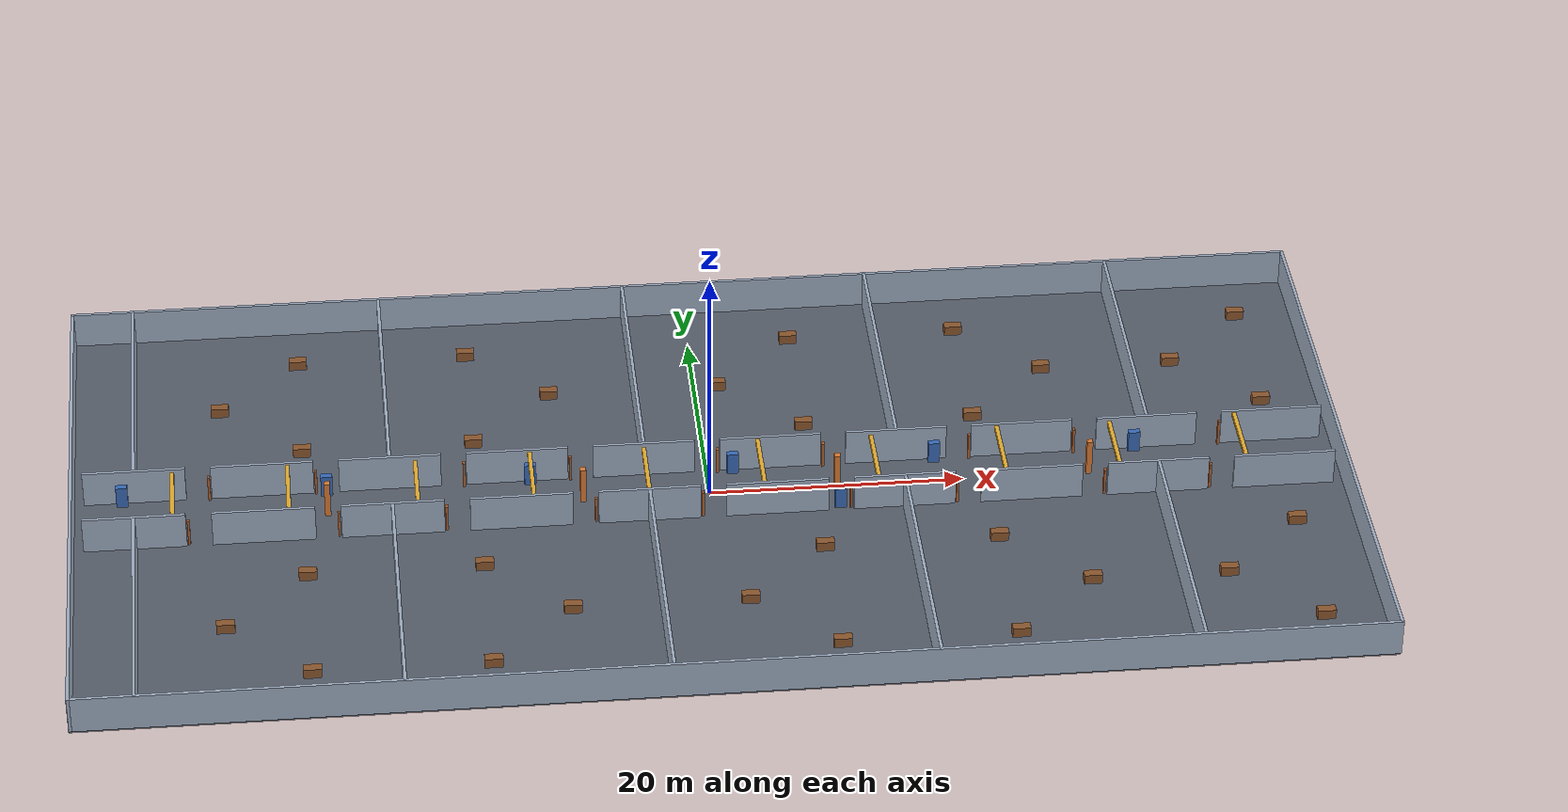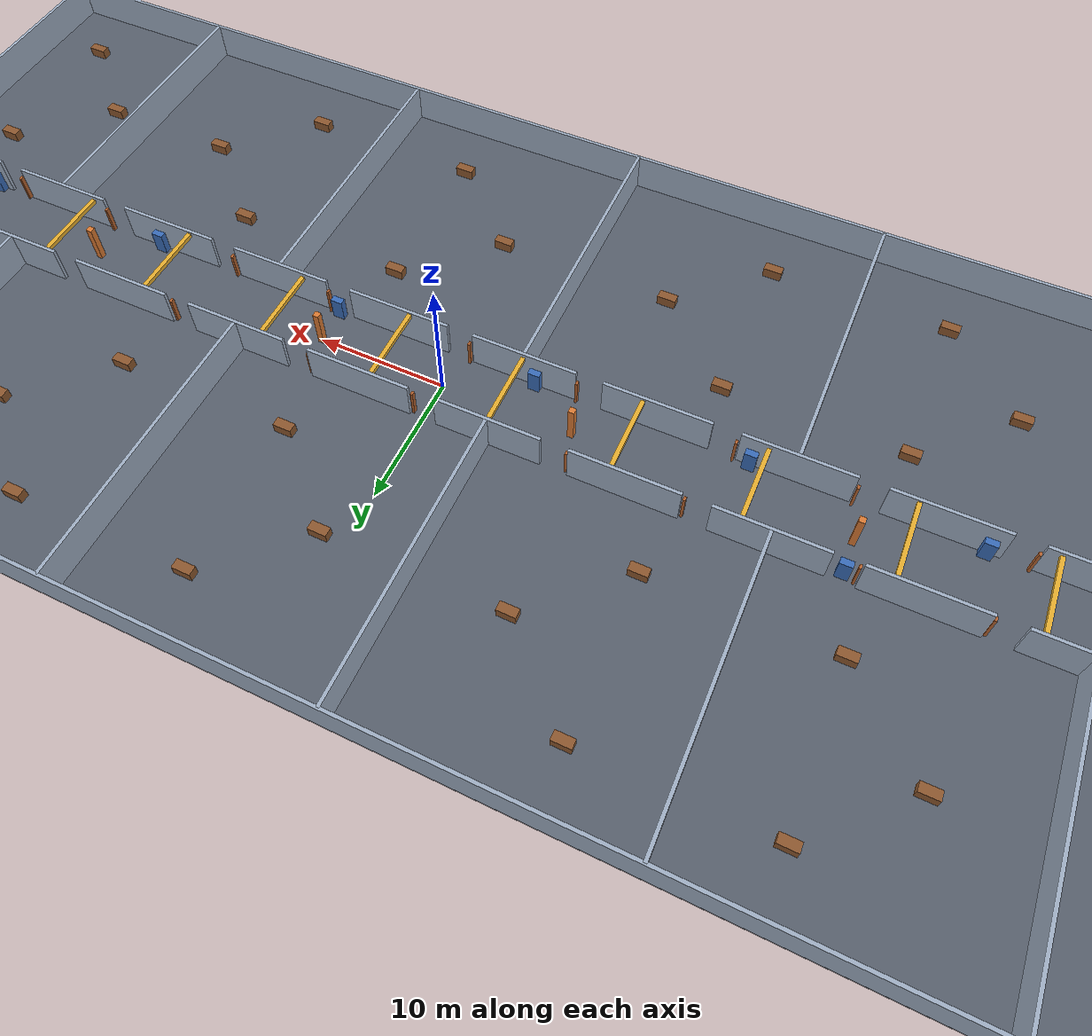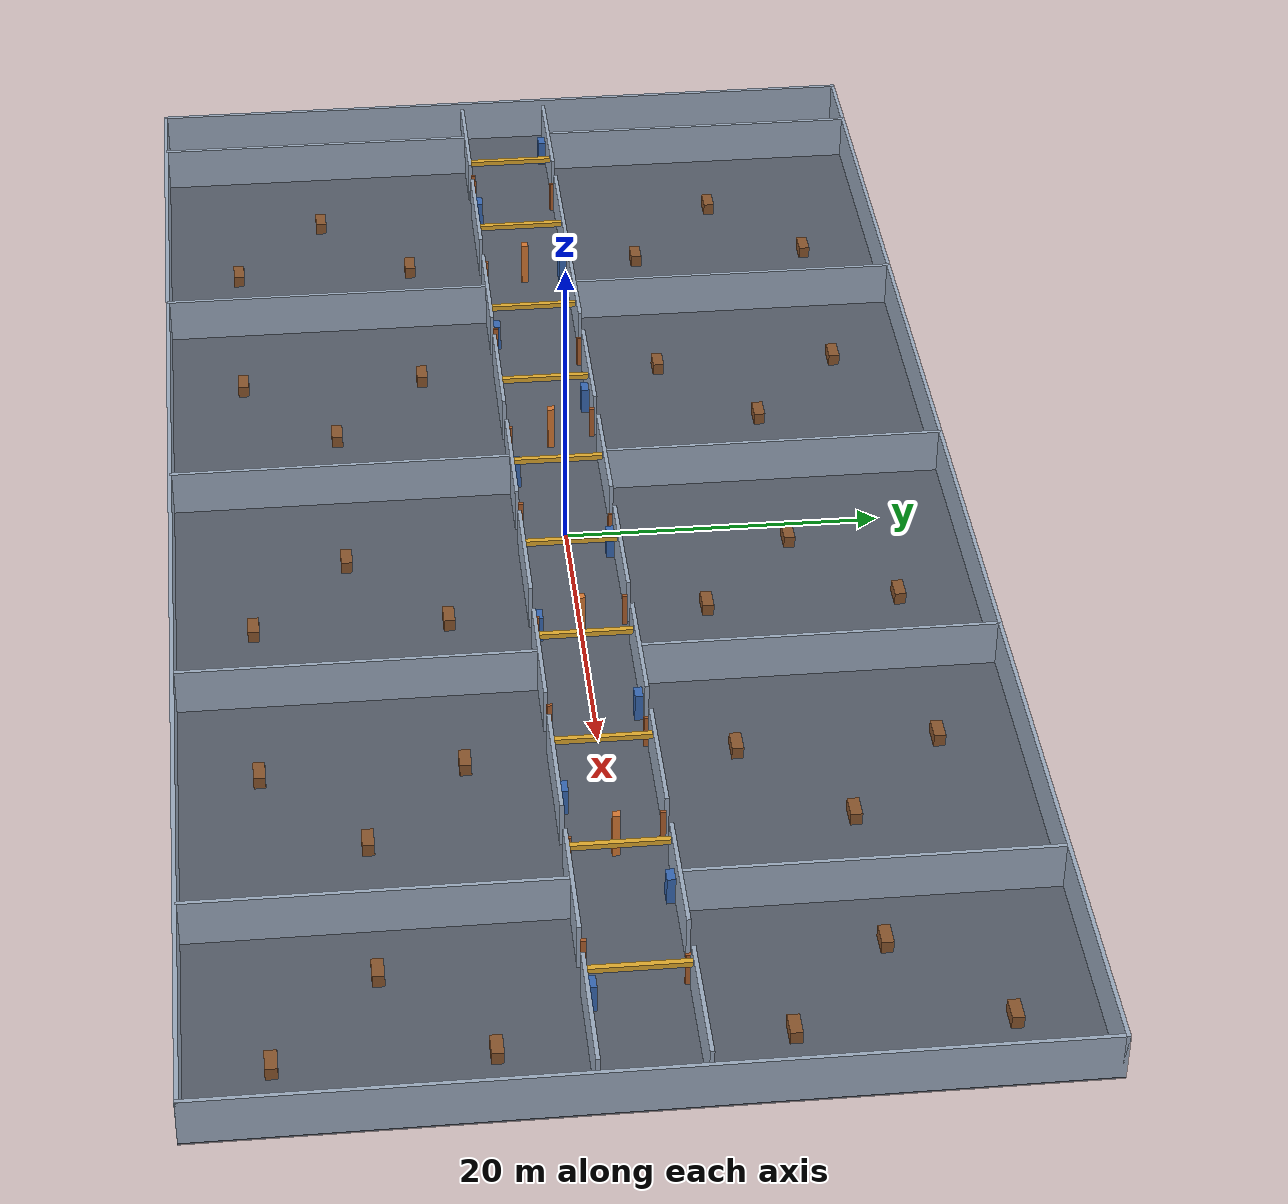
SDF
<sdf version='1.7'>
  <world name='default'>
    <light name='sun' type='directional'>
      <pose>0 0 60 0 0 0</pose>
      <diffuse>0.9 0.9 0.9 1</diffuse>
      <specular>0.2 0.2 0.2 1</specular>
      <direction>-0.3 0.2 -0.9</direction>
    </light>
    <gravity>0 0 -9.8</gravity>
    <physics type='ode'>
      <max_step_size>0.005</max_step_size>
      <real_time_factor>1</real_time_factor>
      <real_time_update_rate>200</real_time_update_rate>
    </physics>
    <plugin filename='ignition-gazebo-physics-system' name='gz::sim::systems::Physics'/>
    <plugin filename='ignition-gazebo-sensors-system' name='gz::sim::systems::Sensors'>
      <render_engine>ogre2</render_engine>
    </plugin>
    <plugin filename='ignition-gazebo-imu-system' name='gz::sim::systems::Imu'/>
    <plugin filename='ignition-gazebo-user-commands-system' name='gz::sim::systems::UserCommands'/>
    <plugin filename='ignition-gazebo-scene-broadcaster-system' name='gz::sim::systems::SceneBroadcaster'/>
    <scene>
      <ambient>0.55 0.55 0.55 1</ambient>
      <background>0.78 0.82 0.88 1</background>
      <shadows>true</shadows>
    </scene>
    <model name='teaching_building_corridor'>
      <static>true</static>
      <link name='floor'>
        <pose>0.000 0.000 -0.050 0 0 0</pose>
        <collision name='collision'>
          <geometry><box><size>100.000 50.000 0.100</size></box></geometry>
        </collision>
        <visual name='visual'>
          <geometry><box><size>100.000 50.000 0.100</size></box></geometry>
          <material>
            <ambient>0.340 0.370 0.420 1.000</ambient>
            <diffuse>0.340 0.370 0.420 1.000</diffuse>
          </material>
        </visual>
      </link>
      <link name='outer_north'>
        <pose>0.000 24.875 1.500 0 0 0</pose>
        <collision name='collision'>
          <geometry><box><size>100.000 0.250 3.000</size></box></geometry>
        </collision>
        <visual name='visual'>
          <geometry><box><size>100.000 0.250 3.000</size></box></geometry>
          <material>
            <ambient>0.620 0.680 0.760 1.000</ambient>
            <diffuse>0.620 0.680 0.760 1.000</diffuse>
          </material>
        </visual>
      </link>
      <link name='outer_south'>
        <pose>0.000 -24.875 1.500 0 0 0</pose>
        <collision name='collision'>
          <geometry><box><size>100.000 0.250 3.000</size></box></geometry>
        </collision>
        <visual name='visual'>
          <geometry><box><size>100.000 0.250 3.000</size></box></geometry>
          <material>
            <ambient>0.620 0.680 0.760 1.000</ambient>
            <diffuse>0.620 0.680 0.760 1.000</diffuse>
          </material>
        </visual>
      </link>
      <link name='outer_east'>
        <pose>49.875 0.000 1.500 0 0 0</pose>
        <collision name='collision'>
          <geometry><box><size>0.250 50.000 3.000</size></box></geometry>
        </collision>
        <visual name='visual'>
          <geometry><box><size>0.250 50.000 3.000</size></box></geometry>
          <material>
            <ambient>0.620 0.680 0.760 1.000</ambient>
            <diffuse>0.620 0.680 0.760 1.000</diffuse>
          </material>
        </visual>
      </link>
      <link name='outer_west'>
        <pose>-49.875 0.000 1.500 0 0 0</pose>
        <collision name='collision'>
          <geometry><box><size>0.250 50.000 3.000</size></box></geometry>
        </collision>
        <visual name='visual'>
          <geometry><box><size>0.250 50.000 3.000</size></box></geometry>
          <material>
            <ambient>0.620 0.680 0.760 1.000</ambient>
            <diffuse>0.620 0.680 0.760 1.000</diffuse>
          </material>
        </visual>
      </link>
      <link name='corridor_north_0'>
        <pose>-45.000 3.000 1.500 0 0 0</pose>
        <collision name='collision'>
          <geometry><box><size>8.000 0.250 3.000</size></box></geometry>
        </collision>
        <visual name='visual'>
          <geometry><box><size>8.000 0.250 3.000</size></box></geometry>
          <material>
            <ambient>0.620 0.680 0.760 1.000</ambient>
            <diffuse>0.620 0.680 0.760 1.000</diffuse>
          </material>
        </visual>
      </link>
      <link name='corridor_north_1'>
        <pose>-35.000 3.000 1.500 0 0 0</pose>
        <collision name='collision'>
          <geometry><box><size>8.000 0.250 3.000</size></box></geometry>
        </collision>
        <visual name='visual'>
          <geometry><box><size>8.000 0.250 3.000</size></box></geometry>
          <material>
            <ambient>0.620 0.680 0.760 1.000</ambient>
            <diffuse>0.620 0.680 0.760 1.000</diffuse>
          </material>
        </visual>
      </link>
      <link name='corridor_north_2'>
        <pose>-25.000 3.000 1.500 0 0 0</pose>
        <collision name='collision'>
          <geometry><box><size>8.000 0.250 3.000</size></box></geometry>
        </collision>
        <visual name='visual'>
          <geometry><box><size>8.000 0.250 3.000</size></box></geometry>
          <material>
            <ambient>0.620 0.680 0.760 1.000</ambient>
            <diffuse>0.620 0.680 0.760 1.000</diffuse>
          </material>
        </visual>
      </link>
      <link name='corridor_north_3'>
        <pose>-15.000 3.000 1.500 0 0 0</pose>
        <collision name='collision'>
          <geometry><box><size>8.000 0.250 3.000</size></box></geometry>
        </collision>
        <visual name='visual'>
          <geometry><box><size>8.000 0.250 3.000</size></box></geometry>
          <material>
            <ambient>0.620 0.680 0.760 1.000</ambient>
            <diffuse>0.620 0.680 0.760 1.000</diffuse>
          </material>
        </visual>
      </link>
      <link name='corridor_north_4'>
        <pose>-5.000 3.000 1.500 0 0 0</pose>
        <collision name='collision'>
          <geometry><box><size>8.000 0.250 3.000</size></box></geometry>
        </collision>
        <visual name='visual'>
          <geometry><box><size>8.000 0.250 3.000</size></box></geometry>
          <material>
            <ambient>0.620 0.680 0.760 1.000</ambient>
            <diffuse>0.620 0.680 0.760 1.000</diffuse>
          </material>
        </visual>
      </link>
      <link name='corridor_north_5'>
        <pose>5.000 3.000 1.500 0 0 0</pose>
        <collision name='collision'>
          <geometry><box><size>8.000 0.250 3.000</size></box></geometry>
        </collision>
        <visual name='visual'>
          <geometry><box><size>8.000 0.250 3.000</size></box></geometry>
          <material>
            <ambient>0.620 0.680 0.760 1.000</ambient>
            <diffuse>0.620 0.680 0.760 1.000</diffuse>
          </material>
        </visual>
      </link>
      <link name='corridor_north_6'>
        <pose>15.000 3.000 1.500 0 0 0</pose>
        <collision name='collision'>
          <geometry><box><size>8.000 0.250 3.000</size></box></geometry>
        </collision>
        <visual name='visual'>
          <geometry><box><size>8.000 0.250 3.000</size></box></geometry>
          <material>
            <ambient>0.620 0.680 0.760 1.000</ambient>
            <diffuse>0.620 0.680 0.760 1.000</diffuse>
          </material>
        </visual>
      </link>
      <link name='corridor_north_7'>
        <pose>25.000 3.000 1.500 0 0 0</pose>
        <collision name='collision'>
          <geometry><box><size>8.000 0.250 3.000</size></box></geometry>
        </collision>
        <visual name='visual'>
          <geometry><box><size>8.000 0.250 3.000</size></box></geometry>
          <material>
            <ambient>0.620 0.680 0.760 1.000</ambient>
            <diffuse>0.620 0.680 0.760 1.000</diffuse>
          </material>
        </visual>
      </link>
      <link name='corridor_north_8'>
        <pose>35.000 3.000 1.500 0 0 0</pose>
        <collision name='collision'>
          <geometry><box><size>8.000 0.250 3.000</size></box></geometry>
        </collision>
        <visual name='visual'>
          <geometry><box><size>8.000 0.250 3.000</size></box></geometry>
          <material>
            <ambient>0.620 0.680 0.760 1.000</ambient>
            <diffuse>0.620 0.680 0.760 1.000</diffuse>
          </material>
        </visual>
      </link>
      <link name='corridor_north_9'>
        <pose>45.000 3.000 1.500 0 0 0</pose>
        <collision name='collision'>
          <geometry><box><size>8.000 0.250 3.000</size></box></geometry>
        </collision>
        <visual name='visual'>
          <geometry><box><size>8.000 0.250 3.000</size></box></geometry>
          <material>
            <ambient>0.620 0.680 0.760 1.000</ambient>
            <diffuse>0.620 0.680 0.760 1.000</diffuse>
          </material>
        </visual>
      </link>
      <link name='corridor_south_0'>
        <pose>-45.000 -3.000 1.500 0 0 0</pose>
        <collision name='collision'>
          <geometry><box><size>8.000 0.250 3.000</size></box></geometry>
        </collision>
        <visual name='visual'>
          <geometry><box><size>8.000 0.250 3.000</size></box></geometry>
          <material>
            <ambient>0.620 0.680 0.760 1.000</ambient>
            <diffuse>0.620 0.680 0.760 1.000</diffuse>
          </material>
        </visual>
      </link>
      <link name='corridor_south_1'>
        <pose>-35.000 -3.000 1.500 0 0 0</pose>
        <collision name='collision'>
          <geometry><box><size>8.000 0.250 3.000</size></box></geometry>
        </collision>
        <visual name='visual'>
          <geometry><box><size>8.000 0.250 3.000</size></box></geometry>
          <material>
            <ambient>0.620 0.680 0.760 1.000</ambient>
            <diffuse>0.620 0.680 0.760 1.000</diffuse>
          </material>
        </visual>
      </link>
      <link name='corridor_south_2'>
        <pose>-25.000 -3.000 1.500 0 0 0</pose>
        <collision name='collision'>
          <geometry><box><size>8.000 0.250 3.000</size></box></geometry>
        </collision>
        <visual name='visual'>
          <geometry><box><size>8.000 0.250 3.000</size></box></geometry>
          <material>
            <ambient>0.620 0.680 0.760 1.000</ambient>
            <diffuse>0.620 0.680 0.760 1.000</diffuse>
          </material>
        </visual>
      </link>
      <link name='corridor_south_3'>
        <pose>-15.000 -3.000 1.500 0 0 0</pose>
        <collision name='collision'>
          <geometry><box><size>8.000 0.250 3.000</size></box></geometry>
        </collision>
        <visual name='visual'>
          <geometry><box><size>8.000 0.250 3.000</size></box></geometry>
          <material>
            <ambient>0.620 0.680 0.760 1.000</ambient>
            <diffuse>0.620 0.680 0.760 1.000</diffuse>
          </material>
        </visual>
      </link>
      <link name='corridor_south_4'>
        <pose>-5.000 -3.000 1.500 0 0 0</pose>
        <collision name='collision'>
          <geometry><box><size>8.000 0.250 3.000</size></box></geometry>
        </collision>
        <visual name='visual'>
          <geometry><box><size>8.000 0.250 3.000</size></box></geometry>
          <material>
            <ambient>0.620 0.680 0.760 1.000</ambient>
            <diffuse>0.620 0.680 0.760 1.000</diffuse>
          </material>
        </visual>
      </link>
      <link name='corridor_south_5'>
        <pose>5.000 -3.000 1.500 0 0 0</pose>
        <collision name='collision'>
          <geometry><box><size>8.000 0.250 3.000</size></box></geometry>
        </collision>
        <visual name='visual'>
          <geometry><box><size>8.000 0.250 3.000</size></box></geometry>
          <material>
            <ambient>0.620 0.680 0.760 1.000</ambient>
            <diffuse>0.620 0.680 0.760 1.000</diffuse>
          </material>
        </visual>
      </link>
      <link name='corridor_south_6'>
        <pose>15.000 -3.000 1.500 0 0 0</pose>
        <collision name='collision'>
          <geometry><box><size>8.000 0.250 3.000</size></box></geometry>
        </collision>
        <visual name='visual'>
          <geometry><box><size>8.000 0.250 3.000</size></box></geometry>
          <material>
            <ambient>0.620 0.680 0.760 1.000</ambient>
            <diffuse>0.620 0.680 0.760 1.000</diffuse>
          </material>
        </visual>
      </link>
      <link name='corridor_south_7'>
        <pose>25.000 -3.000 1.500 0 0 0</pose>
        <collision name='collision'>
          <geometry><box><size>8.000 0.250 3.000</size></box></geometry>
        </collision>
        <visual name='visual'>
          <geometry><box><size>8.000 0.250 3.000</size></box></geometry>
          <material>
            <ambient>0.620 0.680 0.760 1.000</ambient>
            <diffuse>0.620 0.680 0.760 1.000</diffuse>
          </material>
        </visual>
      </link>
      <link name='corridor_south_8'>
        <pose>35.000 -3.000 1.500 0 0 0</pose>
        <collision name='collision'>
          <geometry><box><size>8.000 0.250 3.000</size></box></geometry>
        </collision>
        <visual name='visual'>
          <geometry><box><size>8.000 0.250 3.000</size></box></geometry>
          <material>
            <ambient>0.620 0.680 0.760 1.000</ambient>
            <diffuse>0.620 0.680 0.760 1.000</diffuse>
          </material>
        </visual>
      </link>
      <link name='corridor_south_9'>
        <pose>45.000 -3.000 1.500 0 0 0</pose>
        <collision name='collision'>
          <geometry><box><size>8.000 0.250 3.000</size></box></geometry>
        </collision>
        <visual name='visual'>
          <geometry><box><size>8.000 0.250 3.000</size></box></geometry>
          <material>
            <ambient>0.620 0.680 0.760 1.000</ambient>
            <diffuse>0.620 0.680 0.760 1.000</diffuse>
          </material>
        </visual>
      </link>
      <link name='class_north_0'>
        <pose>-45.000 14.000 1.500 0 0 0</pose>
        <collision name='collision'>
          <geometry><box><size>0.250 21.750 3.000</size></box></geometry>
        </collision>
        <visual name='visual'>
          <geometry><box><size>0.250 21.750 3.000</size></box></geometry>
          <material>
            <ambient>0.620 0.680 0.760 1.000</ambient>
            <diffuse>0.620 0.680 0.760 1.000</diffuse>
          </material>
        </visual>
      </link>
      <link name='class_south_0'>
        <pose>-45.000 -14.000 1.500 0 0 0</pose>
        <collision name='collision'>
          <geometry><box><size>0.250 21.750 3.000</size></box></geometry>
        </collision>
        <visual name='visual'>
          <geometry><box><size>0.250 21.750 3.000</size></box></geometry>
          <material>
            <ambient>0.620 0.680 0.760 1.000</ambient>
            <diffuse>0.620 0.680 0.760 1.000</diffuse>
          </material>
        </visual>
      </link>
      <link name='class_north_1'>
        <pose>-25.000 14.000 1.500 0 0 0</pose>
        <collision name='collision'>
          <geometry><box><size>0.250 21.750 3.000</size></box></geometry>
        </collision>
        <visual name='visual'>
          <geometry><box><size>0.250 21.750 3.000</size></box></geometry>
          <material>
            <ambient>0.620 0.680 0.760 1.000</ambient>
            <diffuse>0.620 0.680 0.760 1.000</diffuse>
          </material>
        </visual>
      </link>
      <link name='class_south_1'>
        <pose>-25.000 -14.000 1.500 0 0 0</pose>
        <collision name='collision'>
          <geometry><box><size>0.250 21.750 3.000</size></box></geometry>
        </collision>
        <visual name='visual'>
          <geometry><box><size>0.250 21.750 3.000</size></box></geometry>
          <material>
            <ambient>0.620 0.680 0.760 1.000</ambient>
            <diffuse>0.620 0.680 0.760 1.000</diffuse>
          </material>
        </visual>
      </link>
      <link name='class_north_2'>
        <pose>-5.000 14.000 1.500 0 0 0</pose>
        <collision name='collision'>
          <geometry><box><size>0.250 21.750 3.000</size></box></geometry>
        </collision>
        <visual name='visual'>
          <geometry><box><size>0.250 21.750 3.000</size></box></geometry>
          <material>
            <ambient>0.620 0.680 0.760 1.000</ambient>
            <diffuse>0.620 0.680 0.760 1.000</diffuse>
          </material>
        </visual>
      </link>
      <link name='class_south_2'>
        <pose>-5.000 -14.000 1.500 0 0 0</pose>
        <collision name='collision'>
          <geometry><box><size>0.250 21.750 3.000</size></box></geometry>
        </collision>
        <visual name='visual'>
          <geometry><box><size>0.250 21.750 3.000</size></box></geometry>
          <material>
            <ambient>0.620 0.680 0.760 1.000</ambient>
            <diffuse>0.620 0.680 0.760 1.000</diffuse>
          </material>
        </visual>
      </link>
      <link name='class_north_3'>
        <pose>15.000 14.000 1.500 0 0 0</pose>
        <collision name='collision'>
          <geometry><box><size>0.250 21.750 3.000</size></box></geometry>
        </collision>
        <visual name='visual'>
          <geometry><box><size>0.250 21.750 3.000</size></box></geometry>
          <material>
            <ambient>0.620 0.680 0.760 1.000</ambient>
            <diffuse>0.620 0.680 0.760 1.000</diffuse>
          </material>
        </visual>
      </link>
      <link name='class_south_3'>
        <pose>15.000 -14.000 1.500 0 0 0</pose>
        <collision name='collision'>
          <geometry><box><size>0.250 21.750 3.000</size></box></geometry>
        </collision>
        <visual name='visual'>
          <geometry><box><size>0.250 21.750 3.000</size></box></geometry>
          <material>
            <ambient>0.620 0.680 0.760 1.000</ambient>
            <diffuse>0.620 0.680 0.760 1.000</diffuse>
          </material>
        </visual>
      </link>
      <link name='class_north_4'>
        <pose>35.000 14.000 1.500 0 0 0</pose>
        <collision name='collision'>
          <geometry><box><size>0.250 21.750 3.000</size></box></geometry>
        </collision>
        <visual name='visual'>
          <geometry><box><size>0.250 21.750 3.000</size></box></geometry>
          <material>
            <ambient>0.620 0.680 0.760 1.000</ambient>
            <diffuse>0.620 0.680 0.760 1.000</diffuse>
          </material>
        </visual>
      </link>
      <link name='class_south_4'>
        <pose>35.000 -14.000 1.500 0 0 0</pose>
        <collision name='collision'>
          <geometry><box><size>0.250 21.750 3.000</size></box></geometry>
        </collision>
        <visual name='visual'>
          <geometry><box><size>0.250 21.750 3.000</size></box></geometry>
          <material>
            <ambient>0.620 0.680 0.760 1.000</ambient>
            <diffuse>0.620 0.680 0.760 1.000</diffuse>
          </material>
        </visual>
      </link>
      <link name='corridor_pillar_0'>
        <pose>-30.000 0.000 1.500 0 0 0</pose>
        <collision name='collision'>
          <geometry><box><size>0.450 0.450 3.000</size></box></geometry>
        </collision>
        <visual name='visual'>
          <geometry><box><size>0.450 0.450 3.000</size></box></geometry>
          <material>
            <ambient>0.860 0.480 0.200 1.000</ambient>
            <diffuse>0.860 0.480 0.200 1.000</diffuse>
          </material>
        </visual>
      </link>
      <link name='corridor_pillar_1'>
        <pose>-10.000 0.000 1.500 0 0 0</pose>
        <collision name='collision'>
          <geometry><box><size>0.450 0.450 3.000</size></box></geometry>
        </collision>
        <visual name='visual'>
          <geometry><box><size>0.450 0.450 3.000</size></box></geometry>
          <material>
            <ambient>0.860 0.480 0.200 1.000</ambient>
            <diffuse>0.860 0.480 0.200 1.000</diffuse>
          </material>
        </visual>
      </link>
      <link name='corridor_pillar_2'>
        <pose>10.000 0.000 1.500 0 0 0</pose>
        <collision name='collision'>
          <geometry><box><size>0.450 0.450 3.000</size></box></geometry>
        </collision>
        <visual name='visual'>
          <geometry><box><size>0.450 0.450 3.000</size></box></geometry>
          <material>
            <ambient>0.860 0.480 0.200 1.000</ambient>
            <diffuse>0.860 0.480 0.200 1.000</diffuse>
          </material>
        </visual>
      </link>
      <link name='corridor_pillar_3'>
        <pose>30.000 0.000 1.500 0 0 0</pose>
        <collision name='collision'>
          <geometry><box><size>0.450 0.450 3.000</size></box></geometry>
        </collision>
        <visual name='visual'>
          <geometry><box><size>0.450 0.450 3.000</size></box></geometry>
          <material>
            <ambient>0.860 0.480 0.200 1.000</ambient>
            <diffuse>0.860 0.480 0.200 1.000</diffuse>
          </material>
        </visual>
      </link>
      <link name='corridor_locker_0'>
        <pose>-46.000 2.620 0.900 0 0 0</pose>
        <collision name='collision'>
          <geometry><box><size>0.900 0.500 1.800</size></box></geometry>
        </collision>
        <visual name='visual'>
          <geometry><box><size>0.900 0.500 1.800</size></box></geometry>
          <material>
            <ambient>0.220 0.420 0.720 1.000</ambient>
            <diffuse>0.220 0.420 0.720 1.000</diffuse>
          </material>
        </visual>
      </link>
      <link name='corridor_locker_1'>
        <pose>-38.000 -2.620 0.900 0 0 0</pose>
        <collision name='collision'>
          <geometry><box><size>0.900 0.500 1.800</size></box></geometry>
        </collision>
        <visual name='visual'>
          <geometry><box><size>0.900 0.500 1.800</size></box></geometry>
          <material>
            <ambient>0.220 0.420 0.720 1.000</ambient>
            <diffuse>0.220 0.420 0.720 1.000</diffuse>
          </material>
        </visual>
      </link>
      <link name='corridor_locker_2'>
        <pose>-30.000 2.620 0.900 0 0 0</pose>
        <collision name='collision'>
          <geometry><box><size>0.900 0.500 1.800</size></box></geometry>
        </collision>
        <visual name='visual'>
          <geometry><box><size>0.900 0.500 1.800</size></box></geometry>
          <material>
            <ambient>0.220 0.420 0.720 1.000</ambient>
            <diffuse>0.220 0.420 0.720 1.000</diffuse>
          </material>
        </visual>
      </link>
      <link name='corridor_locker_3'>
        <pose>-22.000 -2.620 0.900 0 0 0</pose>
        <collision name='collision'>
          <geometry><box><size>0.900 0.500 1.800</size></box></geometry>
        </collision>
        <visual name='visual'>
          <geometry><box><size>0.900 0.500 1.800</size></box></geometry>
          <material>
            <ambient>0.220 0.420 0.720 1.000</ambient>
            <diffuse>0.220 0.420 0.720 1.000</diffuse>
          </material>
        </visual>
      </link>
      <link name='corridor_locker_4'>
        <pose>-14.000 2.620 0.900 0 0 0</pose>
        <collision name='collision'>
          <geometry><box><size>0.900 0.500 1.800</size></box></geometry>
        </collision>
        <visual name='visual'>
          <geometry><box><size>0.900 0.500 1.800</size></box></geometry>
          <material>
            <ambient>0.220 0.420 0.720 1.000</ambient>
            <diffuse>0.220 0.420 0.720 1.000</diffuse>
          </material>
        </visual>
      </link>
      <link name='corridor_locker_5'>
        <pose>-6.000 -2.620 0.900 0 0 0</pose>
        <collision name='collision'>
          <geometry><box><size>0.900 0.500 1.800</size></box></geometry>
        </collision>
        <visual name='visual'>
          <geometry><box><size>0.900 0.500 1.800</size></box></geometry>
          <material>
            <ambient>0.220 0.420 0.720 1.000</ambient>
            <diffuse>0.220 0.420 0.720 1.000</diffuse>
          </material>
        </visual>
      </link>
      <link name='corridor_locker_6'>
        <pose>2.000 2.620 0.900 0 0 0</pose>
        <collision name='collision'>
          <geometry><box><size>0.900 0.500 1.800</size></box></geometry>
        </collision>
        <visual name='visual'>
          <geometry><box><size>0.900 0.500 1.800</size></box></geometry>
          <material>
            <ambient>0.220 0.420 0.720 1.000</ambient>
            <diffuse>0.220 0.420 0.720 1.000</diffuse>
          </material>
        </visual>
      </link>
      <link name='corridor_locker_7'>
        <pose>10.000 -2.620 0.900 0 0 0</pose>
        <collision name='collision'>
          <geometry><box><size>0.900 0.500 1.800</size></box></geometry>
        </collision>
        <visual name='visual'>
          <geometry><box><size>0.900 0.500 1.800</size></box></geometry>
          <material>
            <ambient>0.220 0.420 0.720 1.000</ambient>
            <diffuse>0.220 0.420 0.720 1.000</diffuse>
          </material>
        </visual>
      </link>
      <link name='corridor_locker_8'>
        <pose>18.000 2.620 0.900 0 0 0</pose>
        <collision name='collision'>
          <geometry><box><size>0.900 0.500 1.800</size></box></geometry>
        </collision>
        <visual name='visual'>
          <geometry><box><size>0.900 0.500 1.800</size></box></geometry>
          <material>
            <ambient>0.220 0.420 0.720 1.000</ambient>
            <diffuse>0.220 0.420 0.720 1.000</diffuse>
          </material>
        </visual>
      </link>
      <link name='corridor_locker_9'>
        <pose>26.000 -2.620 0.900 0 0 0</pose>
        <collision name='collision'>
          <geometry><box><size>0.900 0.500 1.800</size></box></geometry>
        </collision>
        <visual name='visual'>
          <geometry><box><size>0.900 0.500 1.800</size></box></geometry>
          <material>
            <ambient>0.220 0.420 0.720 1.000</ambient>
            <diffuse>0.220 0.420 0.720 1.000</diffuse>
          </material>
        </visual>
      </link>
      <link name='corridor_locker_10'>
        <pose>34.000 2.620 0.900 0 0 0</pose>
        <collision name='collision'>
          <geometry><box><size>0.900 0.500 1.800</size></box></geometry>
        </collision>
        <visual name='visual'>
          <geometry><box><size>0.900 0.500 1.800</size></box></geometry>
          <material>
            <ambient>0.220 0.420 0.720 1.000</ambient>
            <diffuse>0.220 0.420 0.720 1.000</diffuse>
          </material>
        </visual>
      </link>
      <link name='corridor_locker_11'>
        <pose>42.000 -2.620 0.900 0 0 0</pose>
        <collision name='collision'>
          <geometry><box><size>0.900 0.500 1.800</size></box></geometry>
        </collision>
        <visual name='visual'>
          <geometry><box><size>0.900 0.500 1.800</size></box></geometry>
          <material>
            <ambient>0.220 0.420 0.720 1.000</ambient>
            <diffuse>0.220 0.420 0.720 1.000</diffuse>
          </material>
        </visual>
      </link>
      <link name='corridor_door_jamb_0'>
        <pose>-39.180 2.780 1.100 0 0 0</pose>
        <collision name='collision'>
          <geometry><box><size>0.180 0.320 2.200</size></box></geometry>
        </collision>
        <visual name='visual'>
          <geometry><box><size>0.180 0.320 2.200</size></box></geometry>
          <material>
            <ambient>0.700 0.380 0.180 1.000</ambient>
            <diffuse>0.700 0.380 0.180 1.000</diffuse>
          </material>
        </visual>
      </link>
      <link name='corridor_door_jamb_south_0'>
        <pose>-40.820 -2.780 1.100 0 0 0</pose>
        <collision name='collision'>
          <geometry><box><size>0.180 0.320 2.200</size></box></geometry>
        </collision>
        <visual name='visual'>
          <geometry><box><size>0.180 0.320 2.200</size></box></geometry>
          <material>
            <ambient>0.700 0.380 0.180 1.000</ambient>
            <diffuse>0.700 0.380 0.180 1.000</diffuse>
          </material>
        </visual>
      </link>
      <link name='corridor_door_jamb_1'>
        <pose>-30.820 2.780 1.100 0 0 0</pose>
        <collision name='collision'>
          <geometry><box><size>0.180 0.320 2.200</size></box></geometry>
        </collision>
        <visual name='visual'>
          <geometry><box><size>0.180 0.320 2.200</size></box></geometry>
          <material>
            <ambient>0.700 0.380 0.180 1.000</ambient>
            <diffuse>0.700 0.380 0.180 1.000</diffuse>
          </material>
        </visual>
      </link>
      <link name='corridor_door_jamb_south_1'>
        <pose>-29.180 -2.780 1.100 0 0 0</pose>
        <collision name='collision'>
          <geometry><box><size>0.180 0.320 2.200</size></box></geometry>
        </collision>
        <visual name='visual'>
          <geometry><box><size>0.180 0.320 2.200</size></box></geometry>
          <material>
            <ambient>0.700 0.380 0.180 1.000</ambient>
            <diffuse>0.700 0.380 0.180 1.000</diffuse>
          </material>
        </visual>
      </link>
      <link name='corridor_door_jamb_2'>
        <pose>-19.180 2.780 1.100 0 0 0</pose>
        <collision name='collision'>
          <geometry><box><size>0.180 0.320 2.200</size></box></geometry>
        </collision>
        <visual name='visual'>
          <geometry><box><size>0.180 0.320 2.200</size></box></geometry>
          <material>
            <ambient>0.700 0.380 0.180 1.000</ambient>
            <diffuse>0.700 0.380 0.180 1.000</diffuse>
          </material>
        </visual>
      </link>
      <link name='corridor_door_jamb_south_2'>
        <pose>-20.820 -2.780 1.100 0 0 0</pose>
        <collision name='collision'>
          <geometry><box><size>0.180 0.320 2.200</size></box></geometry>
        </collision>
        <visual name='visual'>
          <geometry><box><size>0.180 0.320 2.200</size></box></geometry>
          <material>
            <ambient>0.700 0.380 0.180 1.000</ambient>
            <diffuse>0.700 0.380 0.180 1.000</diffuse>
          </material>
        </visual>
      </link>
      <link name='corridor_door_jamb_3'>
        <pose>-10.820 2.780 1.100 0 0 0</pose>
        <collision name='collision'>
          <geometry><box><size>0.180 0.320 2.200</size></box></geometry>
        </collision>
        <visual name='visual'>
          <geometry><box><size>0.180 0.320 2.200</size></box></geometry>
          <material>
            <ambient>0.700 0.380 0.180 1.000</ambient>
            <diffuse>0.700 0.380 0.180 1.000</diffuse>
          </material>
        </visual>
      </link>
      <link name='corridor_door_jamb_south_3'>
        <pose>-9.180 -2.780 1.100 0 0 0</pose>
        <collision name='collision'>
          <geometry><box><size>0.180 0.320 2.200</size></box></geometry>
        </collision>
        <visual name='visual'>
          <geometry><box><size>0.180 0.320 2.200</size></box></geometry>
          <material>
            <ambient>0.700 0.380 0.180 1.000</ambient>
            <diffuse>0.700 0.380 0.180 1.000</diffuse>
          </material>
        </visual>
      </link>
      <link name='corridor_door_jamb_4'>
        <pose>0.820 2.780 1.100 0 0 0</pose>
        <collision name='collision'>
          <geometry><box><size>0.180 0.320 2.200</size></box></geometry>
        </collision>
        <visual name='visual'>
          <geometry><box><size>0.180 0.320 2.200</size></box></geometry>
          <material>
            <ambient>0.700 0.380 0.180 1.000</ambient>
            <diffuse>0.700 0.380 0.180 1.000</diffuse>
          </material>
        </visual>
      </link>
      <link name='corridor_door_jamb_south_4'>
        <pose>-0.820 -2.780 1.100 0 0 0</pose>
        <collision name='collision'>
          <geometry><box><size>0.180 0.320 2.200</size></box></geometry>
        </collision>
        <visual name='visual'>
          <geometry><box><size>0.180 0.320 2.200</size></box></geometry>
          <material>
            <ambient>0.700 0.380 0.180 1.000</ambient>
            <diffuse>0.700 0.380 0.180 1.000</diffuse>
          </material>
        </visual>
      </link>
      <link name='corridor_door_jamb_5'>
        <pose>9.180 2.780 1.100 0 0 0</pose>
        <collision name='collision'>
          <geometry><box><size>0.180 0.320 2.200</size></box></geometry>
        </collision>
        <visual name='visual'>
          <geometry><box><size>0.180 0.320 2.200</size></box></geometry>
          <material>
            <ambient>0.700 0.380 0.180 1.000</ambient>
            <diffuse>0.700 0.380 0.180 1.000</diffuse>
          </material>
        </visual>
      </link>
      <link name='corridor_door_jamb_south_5'>
        <pose>10.820 -2.780 1.100 0 0 0</pose>
        <collision name='collision'>
          <geometry><box><size>0.180 0.320 2.200</size></box></geometry>
        </collision>
        <visual name='visual'>
          <geometry><box><size>0.180 0.320 2.200</size></box></geometry>
          <material>
            <ambient>0.700 0.380 0.180 1.000</ambient>
            <diffuse>0.700 0.380 0.180 1.000</diffuse>
          </material>
        </visual>
      </link>
      <link name='corridor_door_jamb_6'>
        <pose>20.820 2.780 1.100 0 0 0</pose>
        <collision name='collision'>
          <geometry><box><size>0.180 0.320 2.200</size></box></geometry>
        </collision>
        <visual name='visual'>
          <geometry><box><size>0.180 0.320 2.200</size></box></geometry>
          <material>
            <ambient>0.700 0.380 0.180 1.000</ambient>
            <diffuse>0.700 0.380 0.180 1.000</diffuse>
          </material>
        </visual>
      </link>
      <link name='corridor_door_jamb_south_6'>
        <pose>19.180 -2.780 1.100 0 0 0</pose>
        <collision name='collision'>
          <geometry><box><size>0.180 0.320 2.200</size></box></geometry>
        </collision>
        <visual name='visual'>
          <geometry><box><size>0.180 0.320 2.200</size></box></geometry>
          <material>
            <ambient>0.700 0.380 0.180 1.000</ambient>
            <diffuse>0.700 0.380 0.180 1.000</diffuse>
          </material>
        </visual>
      </link>
      <link name='corridor_door_jamb_7'>
        <pose>29.180 2.780 1.100 0 0 0</pose>
        <collision name='collision'>
          <geometry><box><size>0.180 0.320 2.200</size></box></geometry>
        </collision>
        <visual name='visual'>
          <geometry><box><size>0.180 0.320 2.200</size></box></geometry>
          <material>
            <ambient>0.700 0.380 0.180 1.000</ambient>
            <diffuse>0.700 0.380 0.180 1.000</diffuse>
          </material>
        </visual>
      </link>
      <link name='corridor_door_jamb_south_7'>
        <pose>30.820 -2.780 1.100 0 0 0</pose>
        <collision name='collision'>
          <geometry><box><size>0.180 0.320 2.200</size></box></geometry>
        </collision>
        <visual name='visual'>
          <geometry><box><size>0.180 0.320 2.200</size></box></geometry>
          <material>
            <ambient>0.700 0.380 0.180 1.000</ambient>
            <diffuse>0.700 0.380 0.180 1.000</diffuse>
          </material>
        </visual>
      </link>
      <link name='corridor_door_jamb_8'>
        <pose>40.820 2.780 1.100 0 0 0</pose>
        <collision name='collision'>
          <geometry><box><size>0.180 0.320 2.200</size></box></geometry>
        </collision>
        <visual name='visual'>
          <geometry><box><size>0.180 0.320 2.200</size></box></geometry>
          <material>
            <ambient>0.700 0.380 0.180 1.000</ambient>
            <diffuse>0.700 0.380 0.180 1.000</diffuse>
          </material>
        </visual>
      </link>
      <link name='corridor_door_jamb_south_8'>
        <pose>39.180 -2.780 1.100 0 0 0</pose>
        <collision name='collision'>
          <geometry><box><size>0.180 0.320 2.200</size></box></geometry>
        </collision>
        <visual name='visual'>
          <geometry><box><size>0.180 0.320 2.200</size></box></geometry>
          <material>
            <ambient>0.700 0.380 0.180 1.000</ambient>
            <diffuse>0.700 0.380 0.180 1.000</diffuse>
          </material>
        </visual>
      </link>
      <link name='classroom_desk_north_0_0'>
        <pose>-31.800 8.000 0.400 0 0 0</pose>
        <collision name='collision'>
          <geometry><box><size>1.400 0.700 0.800</size></box></geometry>
        </collision>
        <visual name='visual'>
          <geometry><box><size>1.400 0.700 0.800</size></box></geometry>
          <material>
            <ambient>0.550 0.340 0.180 1.000</ambient>
            <diffuse>0.550 0.340 0.180 1.000</diffuse>
          </material>
        </visual>
      </link>
      <link name='classroom_desk_south_0_0'>
        <pose>-31.800 -8.000 0.400 0 0 0</pose>
        <collision name='collision'>
          <geometry><box><size>1.400 0.700 0.800</size></box></geometry>
        </collision>
        <visual name='visual'>
          <geometry><box><size>1.400 0.700 0.800</size></box></geometry>
          <material>
            <ambient>0.550 0.340 0.180 1.000</ambient>
            <diffuse>0.550 0.340 0.180 1.000</diffuse>
          </material>
        </visual>
      </link>
      <link name='classroom_desk_north_0_1'>
        <pose>-38.200 14.000 0.400 0 0 0</pose>
        <collision name='collision'>
          <geometry><box><size>1.400 0.700 0.800</size></box></geometry>
        </collision>
        <visual name='visual'>
          <geometry><box><size>1.400 0.700 0.800</size></box></geometry>
          <material>
            <ambient>0.550 0.340 0.180 1.000</ambient>
            <diffuse>0.550 0.340 0.180 1.000</diffuse>
          </material>
        </visual>
      </link>
      <link name='classroom_desk_south_0_1'>
        <pose>-38.200 -14.000 0.400 0 0 0</pose>
        <collision name='collision'>
          <geometry><box><size>1.400 0.700 0.800</size></box></geometry>
        </collision>
        <visual name='visual'>
          <geometry><box><size>1.400 0.700 0.800</size></box></geometry>
          <material>
            <ambient>0.550 0.340 0.180 1.000</ambient>
            <diffuse>0.550 0.340 0.180 1.000</diffuse>
          </material>
        </visual>
      </link>
      <link name='classroom_desk_north_0_2'>
        <pose>-31.800 20.000 0.400 0 0 0</pose>
        <collision name='collision'>
          <geometry><box><size>1.400 0.700 0.800</size></box></geometry>
        </collision>
        <visual name='visual'>
          <geometry><box><size>1.400 0.700 0.800</size></box></geometry>
          <material>
            <ambient>0.550 0.340 0.180 1.000</ambient>
            <diffuse>0.550 0.340 0.180 1.000</diffuse>
          </material>
        </visual>
      </link>
      <link name='classroom_desk_south_0_2'>
        <pose>-31.800 -20.000 0.400 0 0 0</pose>
        <collision name='collision'>
          <geometry><box><size>1.400 0.700 0.800</size></box></geometry>
        </collision>
        <visual name='visual'>
          <geometry><box><size>1.400 0.700 0.800</size></box></geometry>
          <material>
            <ambient>0.550 0.340 0.180 1.000</ambient>
            <diffuse>0.550 0.340 0.180 1.000</diffuse>
          </material>
        </visual>
      </link>
      <link name='classroom_desk_north_1_0'>
        <pose>-18.200 8.000 0.400 0 0 0</pose>
        <collision name='collision'>
          <geometry><box><size>1.400 0.700 0.800</size></box></geometry>
        </collision>
        <visual name='visual'>
          <geometry><box><size>1.400 0.700 0.800</size></box></geometry>
          <material>
            <ambient>0.550 0.340 0.180 1.000</ambient>
            <diffuse>0.550 0.340 0.180 1.000</diffuse>
          </material>
        </visual>
      </link>
      <link name='classroom_desk_south_1_0'>
        <pose>-18.200 -8.000 0.400 0 0 0</pose>
        <collision name='collision'>
          <geometry><box><size>1.400 0.700 0.800</size></box></geometry>
        </collision>
        <visual name='visual'>
          <geometry><box><size>1.400 0.700 0.800</size></box></geometry>
          <material>
            <ambient>0.550 0.340 0.180 1.000</ambient>
            <diffuse>0.550 0.340 0.180 1.000</diffuse>
          </material>
        </visual>
      </link>
      <link name='classroom_desk_north_1_1'>
        <pose>-11.800 14.000 0.400 0 0 0</pose>
        <collision name='collision'>
          <geometry><box><size>1.400 0.700 0.800</size></box></geometry>
        </collision>
        <visual name='visual'>
          <geometry><box><size>1.400 0.700 0.800</size></box></geometry>
          <material>
            <ambient>0.550 0.340 0.180 1.000</ambient>
            <diffuse>0.550 0.340 0.180 1.000</diffuse>
          </material>
        </visual>
      </link>
      <link name='classroom_desk_south_1_1'>
        <pose>-11.800 -14.000 0.400 0 0 0</pose>
        <collision name='collision'>
          <geometry><box><size>1.400 0.700 0.800</size></box></geometry>
        </collision>
        <visual name='visual'>
          <geometry><box><size>1.400 0.700 0.800</size></box></geometry>
          <material>
            <ambient>0.550 0.340 0.180 1.000</ambient>
            <diffuse>0.550 0.340 0.180 1.000</diffuse>
          </material>
        </visual>
      </link>
      <link name='classroom_desk_north_1_2'>
        <pose>-18.200 20.000 0.400 0 0 0</pose>
        <collision name='collision'>
          <geometry><box><size>1.400 0.700 0.800</size></box></geometry>
        </collision>
        <visual name='visual'>
          <geometry><box><size>1.400 0.700 0.800</size></box></geometry>
          <material>
            <ambient>0.550 0.340 0.180 1.000</ambient>
            <diffuse>0.550 0.340 0.180 1.000</diffuse>
          </material>
        </visual>
      </link>
      <link name='classroom_desk_south_1_2'>
        <pose>-18.200 -20.000 0.400 0 0 0</pose>
        <collision name='collision'>
          <geometry><box><size>1.400 0.700 0.800</size></box></geometry>
        </collision>
        <visual name='visual'>
          <geometry><box><size>1.400 0.700 0.800</size></box></geometry>
          <material>
            <ambient>0.550 0.340 0.180 1.000</ambient>
            <diffuse>0.550 0.340 0.180 1.000</diffuse>
          </material>
        </visual>
      </link>
      <link name='classroom_desk_north_2_0'>
        <pose>8.200 8.000 0.400 0 0 0</pose>
        <collision name='collision'>
          <geometry><box><size>1.400 0.700 0.800</size></box></geometry>
        </collision>
        <visual name='visual'>
          <geometry><box><size>1.400 0.700 0.800</size></box></geometry>
          <material>
            <ambient>0.550 0.340 0.180 1.000</ambient>
            <diffuse>0.550 0.340 0.180 1.000</diffuse>
          </material>
        </visual>
      </link>
      <link name='classroom_desk_south_2_0'>
        <pose>8.200 -8.000 0.400 0 0 0</pose>
        <collision name='collision'>
          <geometry><box><size>1.400 0.700 0.800</size></box></geometry>
        </collision>
        <visual name='visual'>
          <geometry><box><size>1.400 0.700 0.800</size></box></geometry>
          <material>
            <ambient>0.550 0.340 0.180 1.000</ambient>
            <diffuse>0.550 0.340 0.180 1.000</diffuse>
          </material>
        </visual>
      </link>
      <link name='classroom_desk_north_2_1'>
        <pose>1.800 14.000 0.400 0 0 0</pose>
        <collision name='collision'>
          <geometry><box><size>1.400 0.700 0.800</size></box></geometry>
        </collision>
        <visual name='visual'>
          <geometry><box><size>1.400 0.700 0.800</size></box></geometry>
          <material>
            <ambient>0.550 0.340 0.180 1.000</ambient>
            <diffuse>0.550 0.340 0.180 1.000</diffuse>
          </material>
        </visual>
      </link>
      <link name='classroom_desk_south_2_1'>
        <pose>1.800 -14.000 0.400 0 0 0</pose>
        <collision name='collision'>
          <geometry><box><size>1.400 0.700 0.800</size></box></geometry>
        </collision>
        <visual name='visual'>
          <geometry><box><size>1.400 0.700 0.800</size></box></geometry>
          <material>
            <ambient>0.550 0.340 0.180 1.000</ambient>
            <diffuse>0.550 0.340 0.180 1.000</diffuse>
          </material>
        </visual>
      </link>
      <link name='classroom_desk_north_2_2'>
        <pose>8.200 20.000 0.400 0 0 0</pose>
        <collision name='collision'>
          <geometry><box><size>1.400 0.700 0.800</size></box></geometry>
        </collision>
        <visual name='visual'>
          <geometry><box><size>1.400 0.700 0.800</size></box></geometry>
          <material>
            <ambient>0.550 0.340 0.180 1.000</ambient>
            <diffuse>0.550 0.340 0.180 1.000</diffuse>
          </material>
        </visual>
      </link>
      <link name='classroom_desk_south_2_2'>
        <pose>8.200 -20.000 0.400 0 0 0</pose>
        <collision name='collision'>
          <geometry><box><size>1.400 0.700 0.800</size></box></geometry>
        </collision>
        <visual name='visual'>
          <geometry><box><size>1.400 0.700 0.800</size></box></geometry>
          <material>
            <ambient>0.550 0.340 0.180 1.000</ambient>
            <diffuse>0.550 0.340 0.180 1.000</diffuse>
          </material>
        </visual>
      </link>
      <link name='classroom_desk_north_3_0'>
        <pose>21.800 8.000 0.400 0 0 0</pose>
        <collision name='collision'>
          <geometry><box><size>1.400 0.700 0.800</size></box></geometry>
        </collision>
        <visual name='visual'>
          <geometry><box><size>1.400 0.700 0.800</size></box></geometry>
          <material>
            <ambient>0.550 0.340 0.180 1.000</ambient>
            <diffuse>0.550 0.340 0.180 1.000</diffuse>
          </material>
        </visual>
      </link>
      <link name='classroom_desk_south_3_0'>
        <pose>21.800 -8.000 0.400 0 0 0</pose>
        <collision name='collision'>
          <geometry><box><size>1.400 0.700 0.800</size></box></geometry>
        </collision>
        <visual name='visual'>
          <geometry><box><size>1.400 0.700 0.800</size></box></geometry>
          <material>
            <ambient>0.550 0.340 0.180 1.000</ambient>
            <diffuse>0.550 0.340 0.180 1.000</diffuse>
          </material>
        </visual>
      </link>
      <link name='classroom_desk_north_3_1'>
        <pose>28.200 14.000 0.400 0 0 0</pose>
        <collision name='collision'>
          <geometry><box><size>1.400 0.700 0.800</size></box></geometry>
        </collision>
        <visual name='visual'>
          <geometry><box><size>1.400 0.700 0.800</size></box></geometry>
          <material>
            <ambient>0.550 0.340 0.180 1.000</ambient>
            <diffuse>0.550 0.340 0.180 1.000</diffuse>
          </material>
        </visual>
      </link>
      <link name='classroom_desk_south_3_1'>
        <pose>28.200 -14.000 0.400 0 0 0</pose>
        <collision name='collision'>
          <geometry><box><size>1.400 0.700 0.800</size></box></geometry>
        </collision>
        <visual name='visual'>
          <geometry><box><size>1.400 0.700 0.800</size></box></geometry>
          <material>
            <ambient>0.550 0.340 0.180 1.000</ambient>
            <diffuse>0.550 0.340 0.180 1.000</diffuse>
          </material>
        </visual>
      </link>
      <link name='classroom_desk_north_3_2'>
        <pose>21.800 20.000 0.400 0 0 0</pose>
        <collision name='collision'>
          <geometry><box><size>1.400 0.700 0.800</size></box></geometry>
        </collision>
        <visual name='visual'>
          <geometry><box><size>1.400 0.700 0.800</size></box></geometry>
          <material>
            <ambient>0.550 0.340 0.180 1.000</ambient>
            <diffuse>0.550 0.340 0.180 1.000</diffuse>
          </material>
        </visual>
      </link>
      <link name='classroom_desk_south_3_2'>
        <pose>21.800 -20.000 0.400 0 0 0</pose>
        <collision name='collision'>
          <geometry><box><size>1.400 0.700 0.800</size></box></geometry>
        </collision>
        <visual name='visual'>
          <geometry><box><size>1.400 0.700 0.800</size></box></geometry>
          <material>
            <ambient>0.550 0.340 0.180 1.000</ambient>
            <diffuse>0.550 0.340 0.180 1.000</diffuse>
          </material>
        </visual>
      </link>
      <link name='classroom_desk_north_4_0'>
        <pose>45.200 8.000 0.400 0 0 0</pose>
        <collision name='collision'>
          <geometry><box><size>1.400 0.700 0.800</size></box></geometry>
        </collision>
        <visual name='visual'>
          <geometry><box><size>1.400 0.700 0.800</size></box></geometry>
          <material>
            <ambient>0.550 0.340 0.180 1.000</ambient>
            <diffuse>0.550 0.340 0.180 1.000</diffuse>
          </material>
        </visual>
      </link>
      <link name='classroom_desk_south_4_0'>
        <pose>45.200 -8.000 0.400 0 0 0</pose>
        <collision name='collision'>
          <geometry><box><size>1.400 0.700 0.800</size></box></geometry>
        </collision>
        <visual name='visual'>
          <geometry><box><size>1.400 0.700 0.800</size></box></geometry>
          <material>
            <ambient>0.550 0.340 0.180 1.000</ambient>
            <diffuse>0.550 0.340 0.180 1.000</diffuse>
          </material>
        </visual>
      </link>
      <link name='classroom_desk_north_4_1'>
        <pose>38.800 14.000 0.400 0 0 0</pose>
        <collision name='collision'>
          <geometry><box><size>1.400 0.700 0.800</size></box></geometry>
        </collision>
        <visual name='visual'>
          <geometry><box><size>1.400 0.700 0.800</size></box></geometry>
          <material>
            <ambient>0.550 0.340 0.180 1.000</ambient>
            <diffuse>0.550 0.340 0.180 1.000</diffuse>
          </material>
        </visual>
      </link>
      <link name='classroom_desk_south_4_1'>
        <pose>38.800 -14.000 0.400 0 0 0</pose>
        <collision name='collision'>
          <geometry><box><size>1.400 0.700 0.800</size></box></geometry>
        </collision>
        <visual name='visual'>
          <geometry><box><size>1.400 0.700 0.800</size></box></geometry>
          <material>
            <ambient>0.550 0.340 0.180 1.000</ambient>
            <diffuse>0.550 0.340 0.180 1.000</diffuse>
          </material>
        </visual>
      </link>
      <link name='classroom_desk_north_4_2'>
        <pose>45.200 20.000 0.400 0 0 0</pose>
        <collision name='collision'>
          <geometry><box><size>1.400 0.700 0.800</size></box></geometry>
        </collision>
        <visual name='visual'>
          <geometry><box><size>1.400 0.700 0.800</size></box></geometry>
          <material>
            <ambient>0.550 0.340 0.180 1.000</ambient>
            <diffuse>0.550 0.340 0.180 1.000</diffuse>
          </material>
        </visual>
      </link>
      <link name='classroom_desk_south_4_2'>
        <pose>45.200 -20.000 0.400 0 0 0</pose>
        <collision name='collision'>
          <geometry><box><size>1.400 0.700 0.800</size></box></geometry>
        </collision>
        <visual name='visual'>
          <geometry><box><size>1.400 0.700 0.800</size></box></geometry>
          <material>
            <ambient>0.550 0.340 0.180 1.000</ambient>
            <diffuse>0.550 0.340 0.180 1.000</diffuse>
          </material>
        </visual>
      </link>
      <link name='corridor_overhead_landmark_0'>
        <pose>-42.000 0.000 2.550 0 0 0</pose>
        <collision name='collision'>
          <geometry><box><size>0.320 5.750 0.340</size></box></geometry>
        </collision>
        <visual name='visual'>
          <geometry><box><size>0.320 5.750 0.340</size></box></geometry>
          <material>
            <ambient>0.900 0.680 0.180 1.000</ambient>
            <diffuse>0.900 0.680 0.180 1.000</diffuse>
          </material>
        </visual>
      </link>
      <link name='corridor_overhead_landmark_1'>
        <pose>-33.000 0.000 2.700 0 0 0</pose>
        <collision name='collision'>
          <geometry><box><size>0.320 5.750 0.340</size></box></geometry>
        </collision>
        <visual name='visual'>
          <geometry><box><size>0.320 5.750 0.340</size></box></geometry>
          <material>
            <ambient>0.900 0.680 0.180 1.000</ambient>
            <diffuse>0.900 0.680 0.180 1.000</diffuse>
          </material>
        </visual>
      </link>
      <link name='corridor_overhead_landmark_2'>
        <pose>-23.000 0.000 2.480 0 0 0</pose>
        <collision name='collision'>
          <geometry><box><size>0.320 5.750 0.340</size></box></geometry>
        </collision>
        <visual name='visual'>
          <geometry><box><size>0.320 5.750 0.340</size></box></geometry>
          <material>
            <ambient>0.900 0.680 0.180 1.000</ambient>
            <diffuse>0.900 0.680 0.180 1.000</diffuse>
          </material>
        </visual>
      </link>
      <link name='corridor_overhead_landmark_3'>
        <pose>-14.000 0.000 2.660 0 0 0</pose>
        <collision name='collision'>
          <geometry><box><size>0.320 5.750 0.340</size></box></geometry>
        </collision>
        <visual name='visual'>
          <geometry><box><size>0.320 5.750 0.340</size></box></geometry>
          <material>
            <ambient>0.900 0.680 0.180 1.000</ambient>
            <diffuse>0.900 0.680 0.180 1.000</diffuse>
          </material>
        </visual>
      </link>
      <link name='corridor_overhead_landmark_4'>
        <pose>-5.000 0.000 2.520 0 0 0</pose>
        <collision name='collision'>
          <geometry><box><size>0.320 5.750 0.340</size></box></geometry>
        </collision>
        <visual name='visual'>
          <geometry><box><size>0.320 5.750 0.340</size></box></geometry>
          <material>
            <ambient>0.900 0.680 0.180 1.000</ambient>
            <diffuse>0.900 0.680 0.180 1.000</diffuse>
          </material>
        </visual>
      </link>
      <link name='corridor_overhead_landmark_5'>
        <pose>4.000 0.000 2.720 0 0 0</pose>
        <collision name='collision'>
          <geometry><box><size>0.320 5.750 0.340</size></box></geometry>
        </collision>
        <visual name='visual'>
          <geometry><box><size>0.320 5.750 0.340</size></box></geometry>
          <material>
            <ambient>0.900 0.680 0.180 1.000</ambient>
            <diffuse>0.900 0.680 0.180 1.000</diffuse>
          </material>
        </visual>
      </link>
      <link name='corridor_overhead_landmark_6'>
        <pose>13.000 0.000 2.500 0 0 0</pose>
        <collision name='collision'>
          <geometry><box><size>0.320 5.750 0.340</size></box></geometry>
        </collision>
        <visual name='visual'>
          <geometry><box><size>0.320 5.750 0.340</size></box></geometry>
          <material>
            <ambient>0.900 0.680 0.180 1.000</ambient>
            <diffuse>0.900 0.680 0.180 1.000</diffuse>
          </material>
        </visual>
      </link>
      <link name='corridor_overhead_landmark_7'>
        <pose>23.000 0.000 2.680 0 0 0</pose>
        <collision name='collision'>
          <geometry><box><size>0.320 5.750 0.340</size></box></geometry>
        </collision>
        <visual name='visual'>
          <geometry><box><size>0.320 5.750 0.340</size></box></geometry>
          <material>
            <ambient>0.900 0.680 0.180 1.000</ambient>
            <diffuse>0.900 0.680 0.180 1.000</diffuse>
          </material>
        </visual>
      </link>
      <link name='corridor_overhead_landmark_8'>
        <pose>32.000 0.000 2.540 0 0 0</pose>
        <collision name='collision'>
          <geometry><box><size>0.320 5.750 0.340</size></box></geometry>
        </collision>
        <visual name='visual'>
          <geometry><box><size>0.320 5.750 0.340</size></box></geometry>
          <material>
            <ambient>0.900 0.680 0.180 1.000</ambient>
            <diffuse>0.900 0.680 0.180 1.000</diffuse>
          </material>
        </visual>
      </link>
      <link name='corridor_overhead_landmark_9'>
        <pose>42.000 0.000 2.700 0 0 0</pose>
        <collision name='collision'>
          <geometry><box><size>0.320 5.750 0.340</size></box></geometry>
        </collision>
        <visual name='visual'>
          <geometry><box><size>0.320 5.750 0.340</size></box></geometry>
          <material>
            <ambient>0.900 0.680 0.180 1.000</ambient>
            <diffuse>0.900 0.680 0.180 1.000</diffuse>
          </material>
        </visual>
      </link>
    </model>
  </world>
</sdf>
